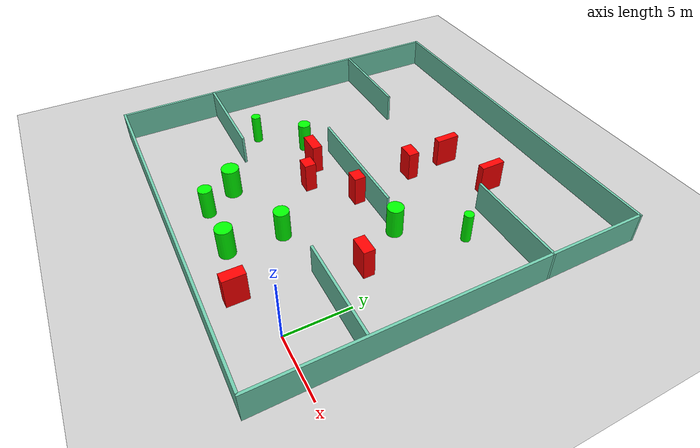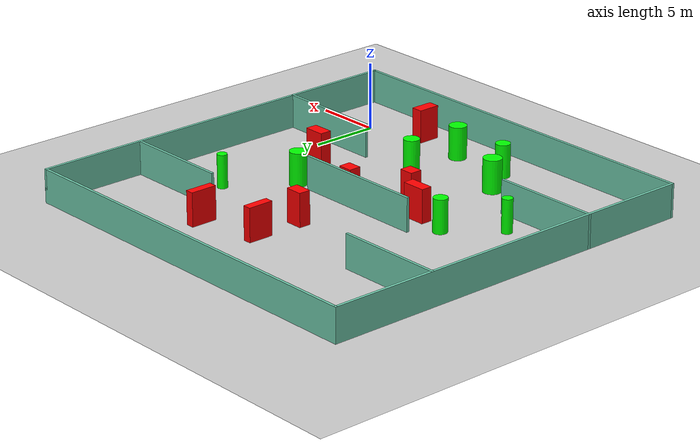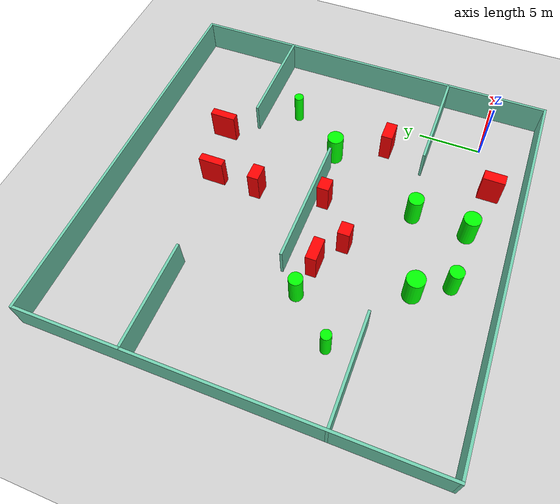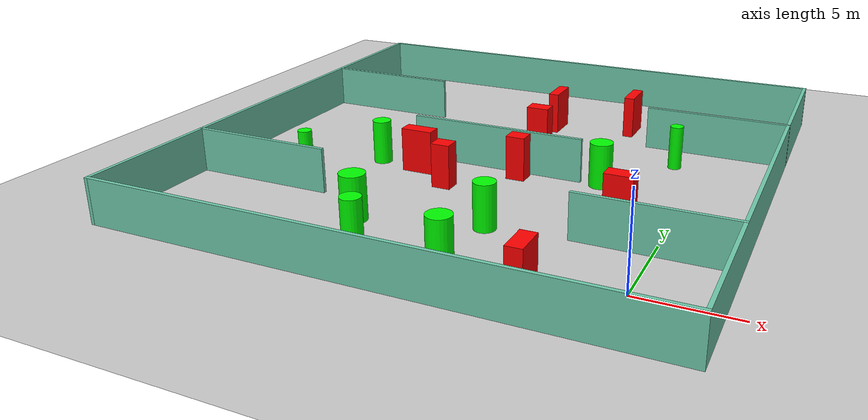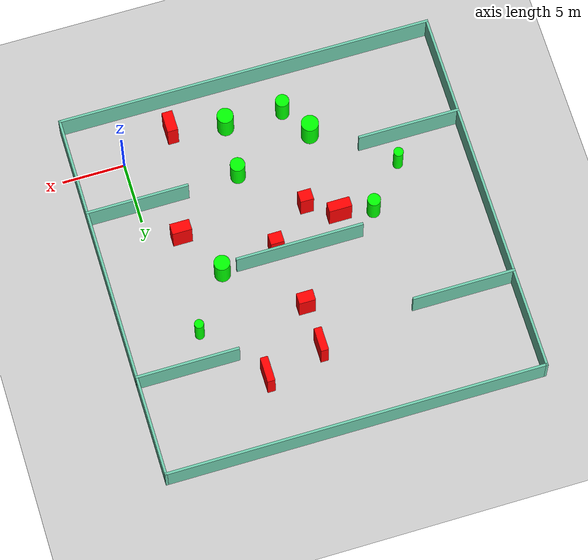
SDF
<sdf version="1.7">
 <world name="default">
  <light name="sun" type="directional">
   <pose>0 0 10 0 -0 0</pose>
   <diffuse>0.8 0.8 0.8 1</diffuse>
   <specular>0.2 0.2 0.2 1</specular>
   <attenuation>
    <range>1000</range>
    <constant>0.9</constant>
    <linear>0.01</linear>
    <quadratic>0.001</quadratic>
   </attenuation>
   <direction>-0.5 0.1 -0.9</direction>
   <spot><inner_angle>0</inner_angle><outer_angle>0</outer_angle><falloff>0</falloff></spot>
  </light>
  <model name="ground_plane">
   <static>1</static>
   <link name="link">
    <collision name="collision">
     <geometry><plane><normal>0 0 1</normal><size>100 100</size></plane></geometry>
     <surface>
      <contact><collide_bitmask>65535</collide_bitmask></contact>
      <friction><ode><mu>100</mu><mu2>50</mu2></ode></friction>
     </surface>
    </collision>
    <visual name="visual">
     <cast_shadows>0</cast_shadows>
     <geometry><plane><normal>0 0 1</normal><size>100 100</size></plane></geometry>
     <material>
      <script><uri>file://media/materials/scripts/gazebo.material</uri><name>Gazebo/Grey</name></script>
     </material>
    </visual>
   </link>
  </model>
  <gravity>0 0 -9.8</gravity>
  <magnetic_field>6e-06 2.3e-05 -4.2e-05</magnetic_field>
  <atmosphere type="adiabatic"/>
  <physics type="ode">
   <max_step_size>0.001</max_step_size>
   <real_time_factor>1</real_time_factor>
   <real_time_update_rate>1000</real_time_update_rate>
  </physics>
  <scene><ambient>0.4 0.4 0.4 1</ambient><background>0.7 0.7 0.7 1</background><shadows>1</shadows></scene>
  <spherical_coordinates>
   <surface_model>EARTH_WGS84</surface_model>
   <latitude_deg>0</latitude_deg>
   <longitude_deg>0</longitude_deg>
   <elevation>0</elevation>
   <heading_deg>0</heading_deg>
  </spherical_coordinates>
  <model name="my_base_walls">
   <link name="Wall_10">
    <collision name="Wall_10_Collision">
     <geometry><box><size>8.2 0.2 2.5</size></box></geometry>
     <pose>0 0 1.25 0 -0 0</pose>
    </collision>
    <visual name="Wall_10_Visual">
     <pose>0 0 1.25 0 -0 0</pose>
     <geometry><box><size>8.2 0.2 2.5</size></box></geometry>
     <material>
      <script><uri>file://media/materials/scripts/gazebo.material</uri><name>Gazebo/Grey</name></script>
      <ambient>0.435294 0.796078 0.67451 1</ambient>
     </material>
     <meta><layer>0</layer></meta>
    </visual>
    <pose>-11 -7 0 0 -0 0</pose>
   </link>
   <link name="Wall_12">
    <collision name="Wall_12_Collision">
     <geometry><box><size>8.2 0.2 2.5</size></box></geometry>
     <pose>0 0 1.25 0 -0 0</pose>
    </collision>
    <visual name="Wall_12_Visual">
     <pose>0 0 1.25 0 -0 0</pose>
     <geometry><box><size>8.2 0.2 2.5</size></box></geometry>
     <material>
      <script><uri>file://media/materials/scripts/gazebo.material</uri><name>Gazebo/Grey</name></script>
      <ambient>0.435294 0.796078 0.67451 1</ambient>
     </material>
     <meta><layer>0</layer></meta>
    </visual>
    <pose>-11 7 0 0 -0 0</pose>
   </link>
   <link name="Wall_14">
    <collision name="Wall_14_Collision">
     <geometry><box><size>8.2 0.2 2.5</size></box></geometry>
     <pose>0 0 1.25 0 -0 0</pose>
    </collision>
    <visual name="Wall_14_Visual">
     <pose>0 0 1.25 0 -0 0</pose>
     <geometry><box><size>8.2 0.2 2.5</size></box></geometry>
     <material>
      <script><uri>file://media/materials/scripts/gazebo.material</uri><name>Gazebo/Grey</name></script>
      <ambient>0.435294 0.796078 0.67451 1</ambient>
     </material>
     <meta><layer>0</layer></meta>
    </visual>
    <pose>11 7 0 0 -0 3.14159</pose>
   </link>
   <link name="Wall_16">
    <collision name="Wall_16_Collision">
     <geometry><box><size>10.2 0.2 2.5</size></box></geometry>
     <pose>0 0 1.25 0 -0 0</pose>
    </collision>
    <visual name="Wall_16_Visual">
     <pose>0 0 1.25 0 -0 0</pose>
     <geometry><box><size>10.2 0.2 2.5</size></box></geometry>
     <material>
      <script><uri>file://media/materials/scripts/gazebo.material</uri><name>Gazebo/Grey</name></script>
      <ambient>0.435294 0.796078 0.67451 1</ambient>
     </material>
     <meta><layer>0</layer></meta>
    </visual>
    <pose>0 0 0 0 -0 3.14159</pose>
   </link>
   <link name="Wall_2">
    <collision name="Wall_2_Collision">
     <geometry><box><size>30.2 0.2 2.5</size></box></geometry>
     <pose>0 0 1.25 0 -0 0</pose>
    </collision>
    <visual name="Wall_2_Visual">
     <pose>0 0 1.25 0 -0 0</pose>
     <geometry><box><size>30.2 0.2 2.5</size></box></geometry>
     <material>
      <script><uri>file://media/materials/scripts/gazebo.material</uri><name>Gazebo/Grey</name></script>
      <ambient>0.435294 0.796078 0.67451 1</ambient>
     </material>
     <meta><layer>0</layer></meta>
    </visual>
    <pose>0 -15 0 0 -0 3.14159</pose>
   </link>
   <link name="Wall_3">
    <collision name="Wall_3_Collision">
     <geometry><box><size>30.2 0.2 2.5</size></box></geometry>
     <pose>0 0 1.25 0 -0 0</pose>
    </collision>
    <visual name="Wall_3_Visual">
     <pose>0 0 1.25 0 -0 0</pose>
     <geometry><box><size>30.2 0.2 2.5</size></box></geometry>
     <material>
      <script><uri>file://media/materials/scripts/gazebo.material</uri><name>Gazebo/Grey</name></script>
      <ambient>0.435294 0.796078 0.67451 1</ambient>
     </material>
     <meta><layer>0</layer></meta>
    </visual>
    <pose>-15 0 0 0 -0 1.5708</pose>
   </link>
   <link name="Wall_4">
    <collision name="Wall_4_Collision">
     <geometry><box><size>30.2 0.2 2.5</size></box></geometry>
     <pose>0 0 1.25 0 -0 0</pose>
    </collision>
    <visual name="Wall_4_Visual">
     <pose>0 0 1.25 0 -0 0</pose>
     <geometry><box><size>30.2 0.2 2.5</size></box></geometry>
     <material>
      <script><uri>file://media/materials/scripts/gazebo.material</uri><name>Gazebo/Grey</name></script>
      <ambient>0.435294 0.796078 0.67451 1</ambient>
     </material>
     <meta><layer>0</layer></meta>
    </visual>
    <pose>0 15 0 0 -0 0</pose>
   </link>
   <link name="Wall_6">
    <collision name="Wall_6_Collision">
     <geometry><box><size>30.2 0.2 2.5</size></box></geometry>
     <pose>0 0 1.25 0 -0 0</pose>
    </collision>
    <visual name="Wall_6_Visual">
     <pose>0 0 1.25 0 -0 0</pose>
     <geometry><box><size>30.2 0.2 2.5</size></box></geometry>
     <material>
      <script><uri>file://media/materials/scripts/gazebo.material</uri><name>Gazebo/Grey</name></script>
      <ambient>0.435294 0.796078 0.67451 1</ambient>
     </material>
     <meta><layer>0</layer></meta>
    </visual>
    <pose>15 0 0 0 -0 1.5708</pose>
   </link>
   <link name="Wall_8">
    <collision name="Wall_8_Collision">
     <geometry><box><size>8.2 0.2 2.5</size></box></geometry>
     <pose>0 0 1.25 0 -0 0</pose>
    </collision>
    <visual name="Wall_8_Visual">
     <pose>0 0 1.25 0 -0 0</pose>
     <geometry><box><size>8.2 0.2 2.5</size></box></geometry>
     <material>
      <script><uri>file://media/materials/scripts/gazebo.material</uri><name>Gazebo/Grey</name></script>
      <ambient>0.435294 0.796078 0.67451 1</ambient>
     </material>
     <meta><layer>0</layer></meta>
    </visual>
    <pose>11 -7 0 0 -0 3.14159</pose>
   </link>
   <static>1</static>
   <pose>-11 11 0 0 -0 0</pose>
  </model>
  <model name="cylinder1">
   <static>1</static>
   <link name="link">
    <inertial>
     <mass>1</mass>
     <inertia><ixx>0.5</ixx><ixy>0</ixy><ixz>0</ixz><iyy>0.5</iyy><iyz>0</iyz><izz>1</izz></inertia>
    </inertial>
    <collision name="collision">
     <geometry><cylinder><radius>0.3878384120378824</radius><length>2.5</length></cylinder></geometry>
    </collision>
    <visual name="visual">
     <geometry><cylinder><radius>0.3878384120378824</radius><length>2.5</length></cylinder></geometry>
     <material>
      <ambient>0 1 0 1</ambient>
      <diffuse>0 1 0 1</diffuse>
      <specular>0.1 0.1 0.1 1</specular>
      <emissive>0 0 0 0</emissive>
     </material>
    </visual>
   </link>
   <pose>-20.507754571927393 6.069599284173201 1.25 0 0 0</pose>
  </model>
  <model name="cylinder2">
   <static>1</static>
   <link name="link">
    <inertial>
     <mass>1</mass>
     <inertia><ixx>0.5</ixx><ixy>0</ixy><ixz>0</ixz><iyy>0.5</iyy><iyz>0</iyz><izz>1</izz></inertia>
    </inertial>
    <collision name="collision">
     <geometry><cylinder><radius>0.6914250292959119</radius><length>2.5</length></cylinder></geometry>
    </collision>
    <visual name="visual">
     <geometry><cylinder><radius>0.6914250292959119</radius><length>2.5</length></cylinder></geometry>
     <material>
      <ambient>0 1 0 1</ambient>
      <diffuse>0 1 0 1</diffuse>
      <specular>0.1 0.1 0.1 1</specular>
      <emissive>0 0 0 0</emissive>
     </material>
    </visual>
   </link>
   <pose>-14.618460543139864 1.7664294047211433 1.25 0 0 0</pose>
  </model>
  <model name="cylinder3">
   <static>1</static>
   <link name="link">
    <inertial>
     <mass>1</mass>
     <inertia><ixx>0.5</ixx><ixy>0</ixy><ixz>0</ixz><iyy>0.5</iyy><iyz>0</iyz><izz>1</izz></inertia>
    </inertial>
    <collision name="collision">
     <geometry><cylinder><radius>0.5924211701379287</radius><length>2.5</length></cylinder></geometry>
    </collision>
    <visual name="visual">
     <geometry><cylinder><radius>0.5924211701379287</radius><length>2.5</length></cylinder></geometry>
     <material>
      <ambient>0 1 0 1</ambient>
      <diffuse>0 1 0 1</diffuse>
      <specular>0.1 0.1 0.1 1</specular>
      <emissive>0 0 0 0</emissive>
     </material>
    </visual>
   </link>
   <pose>-8.233084293332066 3.4764013158500298 1.25 0 0 0</pose>
  </model>
  <model name="cylinder4">
   <static>1</static>
   <link name="link">
    <inertial>
     <mass>1</mass>
     <inertia><ixx>0.5</ixx><ixy>0</ixy><ixz>0</ixz><iyy>0.5</iyy><iyz>0</iyz><izz>1</izz></inertia>
    </inertial>
    <collision name="collision">
     <geometry><cylinder><radius>0.6367528427593963</radius><length>2.5</length></cylinder></geometry>
    </collision>
    <visual name="visual">
     <geometry><cylinder><radius>0.6367528427593963</radius><length>2.5</length></cylinder></geometry>
     <material>
      <ambient>0 1 0 1</ambient>
      <diffuse>0 1 0 1</diffuse>
      <specular>0.1 0.1 0.1 1</specular>
      <emissive>0 0 0 0</emissive>
     </material>
    </visual>
   </link>
   <pose>-4.77629822257013 10.968139967663973 1.25 0 0 0</pose>
  </model>
  <model name="cylinder5">
   <static>1</static>
   <link name="link">
    <inertial>
     <mass>1</mass>
     <inertia><ixx>0.5</ixx><ixy>0</ixy><ixz>0</ixz><iyy>0.5</iyy><iyz>0</iyz><izz>1</izz></inertia>
    </inertial>
    <collision name="collision">
     <geometry><cylinder><radius>0.5417499910226914</radius><length>2.5</length></cylinder></geometry>
    </collision>
    <visual name="visual">
     <geometry><cylinder><radius>0.5417499910226914</radius><length>2.5</length></cylinder></geometry>
     <material>
      <ambient>0 1 0 1</ambient>
      <diffuse>0 1 0 1</diffuse>
      <specular>0.1 0.1 0.1 1</specular>
      <emissive>0 0 0 0</emissive>
     </material>
    </visual>
   </link>
   <pose>-13.107122774639556 -0.7025555886338366 1.25 0 0 0</pose>
  </model>
  <model name="cylinder6">
   <static>1</static>
   <link name="link">
    <inertial>
     <mass>1</mass>
     <inertia><ixx>0.5</ixx><ixy>0</ixy><ixz>0</ixz><iyy>0.5</iyy><iyz>0</iyz><izz>1</izz></inertia>
    </inertial>
    <collision name="collision">
     <geometry><cylinder><radius>0.5250563357592856</radius><length>2.5</length></cylinder></geometry>
    </collision>
    <visual name="visual">
     <geometry><cylinder><radius>0.5250563357592856</radius><length>2.5</length></cylinder></geometry>
     <material>
      <ambient>0 1 0 1</ambient>
      <diffuse>0 1 0 1</diffuse>
      <specular>0.1 0.1 0.1 1</specular>
      <emissive>0 0 0 0</emissive>
     </material>
    </visual>
   </link>
   <pose>-17.495067010500662 9.351935858387554 1.25 0 0 0</pose>
  </model>
  <model name="cylinder7">
   <static>1</static>
   <link name="link">
    <inertial>
     <mass>1</mass>
     <inertia><ixx>0.5</ixx><ixy>0</ixy><ixz>0</ixz><iyy>0.5</iyy><iyz>0</iyz><izz>1</izz></inertia>
    </inertial>
    <collision name="collision">
     <geometry><cylinder><radius>0.6543960267701354</radius><length>2.5</length></cylinder></geometry>
    </collision>
    <visual name="visual">
     <geometry><cylinder><radius>0.6543960267701354</radius><length>2.5</length></cylinder></geometry>
     <material>
      <ambient>0 1 0 1</ambient>
      <diffuse>0 1 0 1</diffuse>
      <specular>0.1 0.1 0.1 1</specular>
      <emissive>0 0 0 0</emissive>
     </material>
    </visual>
   </link>
   <pose>-8.474656087602161 -0.7617104126612402 1.25 0 0 0</pose>
  </model>
  <model name="cylinder8">
   <static>1</static>
   <link name="link">
    <inertial>
     <mass>1</mass>
     <inertia><ixx>0.5</ixx><ixy>0</ixy><ixz>0</ixz><iyy>0.5</iyy><iyz>0</iyz><izz>1</izz></inertia>
    </inertial>
    <collision name="collision">
     <geometry><cylinder><radius>0.372000546528502</radius><length>2.5</length></cylinder></geometry>
    </collision>
    <visual name="visual">
     <geometry><cylinder><radius>0.372000546528502</radius><length>2.5</length></cylinder></geometry>
     <material>
      <ambient>0 1 0 1</ambient>
      <diffuse>0 1 0 1</diffuse>
      <specular>0.1 0.1 0.1 1</specular>
      <emissive>0 0 0 0</emissive>
     </material>
    </visual>
   </link>
   <pose>-1.7097015159536966 15.254034785924318 1.25 0 0 0</pose>
  </model>
  <model name="box1">
   <static>1</static>
   <link name="link">
    <inertial>
     <mass>1</mass>
     <inertia><ixx>0.083</ixx><ixy>0</ixy><ixz>0</ixz><iyy>0.083</iyy><iyz>0</iyz><izz>0.083</izz></inertia>
    </inertial>
    <collision name="collision">
     <geometry><box><size>1.3165121399893396 0.8897173183244313 2.5</size></box></geometry>
    </collision>
    <visual name="visual">
     <geometry><box><size>1.3165121399893396 0.8897173183244313 2.5</size></box></geometry>
     <material>
      <ambient>1 0 0 1</ambient>
      <diffuse>1 0 0 1</diffuse>
      <specular>0.1 0.1 0.1 1</specular>
      <emissive>0 0 0 0</emissive>
     </material>
    </visual>
    <sensor name="my_contact" type="contact">
     <contact><collision>box_collision</collision><topic>__default_topic__</topic></contact>
    </sensor>
   </link>
   <pose>-10.130814376336453 15.490929116212968 1.25 0 0 0</pose>
  </model>
  <model name="box2">
   <static>1</static>
   <link name="link">
    <inertial>
     <mass>1</mass>
     <inertia><ixx>0.083</ixx><ixy>0</ixy><ixz>0</ixz><iyy>0.083</iyy><iyz>0</iyz><izz>0.083</izz></inertia>
    </inertial>
    <collision name="collision">
     <geometry><box><size>1.0801783237108418 0.9136090568273322 2.5</size></box></geometry>
    </collision>
    <visual name="visual">
     <geometry><box><size>1.0801783237108418 0.9136090568273322 2.5</size></box></geometry>
     <material>
      <ambient>1 0 0 1</ambient>
      <diffuse>1 0 0 1</diffuse>
      <specular>0.1 0.1 0.1 1</specular>
      <emissive>0 0 0 0</emissive>
     </material>
    </visual>
    <sensor name="my_contact" type="contact">
     <contact><collision>box_collision</collision><topic>__default_topic__</topic></contact>
    </sensor>
   </link>
   <pose>-9.328369809221357 10.202918372252324 1.25 0 0 0</pose>
  </model>
  <model name="box3">
   <static>1</static>
   <link name="link">
    <inertial>
     <mass>1</mass>
     <inertia><ixx>0.083</ixx><ixy>0</ixy><ixz>0</ixz><iyy>0.083</iyy><iyz>0</iyz><izz>0.083</izz></inertia>
    </inertial>
    <collision name="collision">
     <geometry><box><size>1.82114421262248 0.8153494685217539 2.5</size></box></geometry>
    </collision>
    <visual name="visual">
     <geometry><box><size>1.82114421262248 0.8153494685217539 2.5</size></box></geometry>
     <material>
      <ambient>1 0 0 1</ambient>
      <diffuse>1 0 0 1</diffuse>
      <specular>0.1 0.1 0.1 1</specular>
      <emissive>0 0 0 0</emissive>
     </material>
    </visual>
    <sensor name="my_contact" type="contact">
     <contact><collision>box_collision</collision><topic>__default_topic__</topic></contact>
    </sensor>
   </link>
   <pose>-14.809173721428575 8.952682463688793 1.25 0 0 0</pose>
  </model>
  <model name="box4">
   <static>1</static>
   <link name="link">
    <inertial>
     <mass>1</mass>
     <inertia><ixx>0.083</ixx><ixy>0</ixy><ixz>0</ixz><iyy>0.083</iyy><iyz>0</iyz><izz>0.083</izz></inertia>
    </inertial>
    <collision name="collision">
     <geometry><box><size>0.6140983879916175 1.9256817889050954 2.5</size></box></geometry>
    </collision>
    <visual name="visual">
     <geometry><box><size>0.6140983879916175 1.9256817889050954 2.5</size></box></geometry>
     <material>
      <ambient>1 0 0 1</ambient>
      <diffuse>1 0 0 1</diffuse>
      <specular>0.1 0.1 0.1 1</specular>
      <emissive>0 0 0 0</emissive>
     </material>
    </visual>
    <sensor name="my_contact" type="contact">
     <contact><collision>box_collision</collision><topic>__default_topic__</topic></contact>
    </sensor>
   </link>
   <pose>-10.248861870814574 19.111393171264904 1.25 0 0 0</pose>
  </model>
  <model name="box5">
   <static>1</static>
   <link name="link">
    <inertial>
     <mass>1</mass>
     <inertia><ixx>0.083</ixx><ixy>0</ixy><ixz>0</ixz><iyy>0.083</iyy><iyz>0</iyz><izz>0.083</izz></inertia>
    </inertial>
    <collision name="collision">
     <geometry><box><size>0.8511611833251564 1.689361986177546 2.5</size></box></geometry>
    </collision>
    <visual name="visual">
     <geometry><box><size>0.8511611833251564 1.689361986177546 2.5</size></box></geometry>
     <material>
      <ambient>1 0 0 1</ambient>
      <diffuse>1 0 0 1</diffuse>
      <specular>0.1 0.1 0.1 1</specular>
      <emissive>0 0 0 0</emissive>
     </material>
    </visual>
    <sensor name="my_contact" type="contact">
     <contact><collision>box_collision</collision><topic>__default_topic__</topic></contact>
    </sensor>
   </link>
   <pose>-4.213969383269676 -1.5470284140672992 1.25 0 0 0</pose>
  </model>
  <model name="box6">
   <static>1</static>
   <link name="link">
    <inertial>
     <mass>1</mass>
     <inertia><ixx>0.083</ixx><ixy>0</ixy><ixz>0</ixz><iyy>0.083</iyy><iyz>0</iyz><izz>0.083</izz></inertia>
    </inertial>
    <collision name="collision">
     <geometry><box><size>1.5569698171503517 0.8816557871030346 2.5</size></box></geometry>
    </collision>
    <visual name="visual">
     <geometry><box><size>1.5569698171503517 0.8816557871030346 2.5</size></box></geometry>
     <material>
      <ambient>1 0 0 1</ambient>
      <diffuse>1 0 0 1</diffuse>
      <specular>0.1 0.1 0.1 1</specular>
      <emissive>0 0 0 0</emissive>
     </material>
    </visual>
    <sensor name="my_contact" type="contact">
     <contact><collision>box_collision</collision><topic>__default_topic__</topic></contact>
    </sensor>
   </link>
   <pose>-2.573590578839166 7.209137230287038 1.25 0 0 0</pose>
  </model>
  <model name="box7">
   <static>1</static>
   <link name="link">
    <inertial>
     <mass>1</mass>
     <inertia><ixx>0.083</ixx><ixy>0</ixy><ixz>0</ixz><iyy>0.083</iyy><iyz>0</iyz><izz>0.083</izz></inertia>
    </inertial>
    <collision name="collision">
     <geometry><box><size>0.6103526290806768 2.014605601210754 2.5</size></box></geometry>
    </collision>
    <visual name="visual">
     <geometry><box><size>0.6103526290806768 2.014605601210754 2.5</size></box></geometry>
     <material>
      <ambient>1 0 0 1</ambient>
      <diffuse>1 0 0 1</diffuse>
      <specular>0.1 0.1 0.1 1</specular>
      <emissive>0 0 0 0</emissive>
     </material>
    </visual>
    <sensor name="my_contact" type="contact">
     <contact><collision>box_collision</collision><topic>__default_topic__</topic></contact>
    </sensor>
   </link>
   <pose>-5.660009711806394 20.248259334990422 1.25 0 0 0</pose>
  </model>
  <model name="box8">
   <static>1</static>
   <link name="link">
    <inertial>
     <mass>1</mass>
     <inertia><ixx>0.083</ixx><ixy>0</ixy><ixz>0</ixz><iyy>0.083</iyy><iyz>0</iyz><izz>0.083</izz></inertia>
    </inertial>
    <collision name="collision">
     <geometry><box><size>1.0666081928726867 0.9141187742713767 2.5</size></box></geometry>
    </collision>
    <visual name="visual">
     <geometry><box><size>1.0666081928726867 0.9141187742713767 2.5</size></box></geometry>
     <material>
      <ambient>1 0 0 1</ambient>
      <diffuse>1 0 0 1</diffuse>
      <specular>0.1 0.1 0.1 1</specular>
      <emissive>0 0 0 0</emissive>
     </material>
    </visual>
    <sensor name="my_contact" type="contact">
     <contact><collision>box_collision</collision><topic>__default_topic__</topic></contact>
    </sensor>
   </link>
   <pose>-12.534235077309209 7.482806492580231 1.25 0 0 0</pose>
  </model>
 </world>
</sdf>
